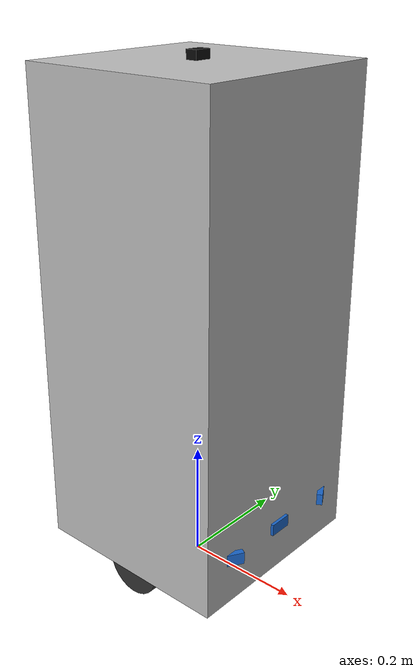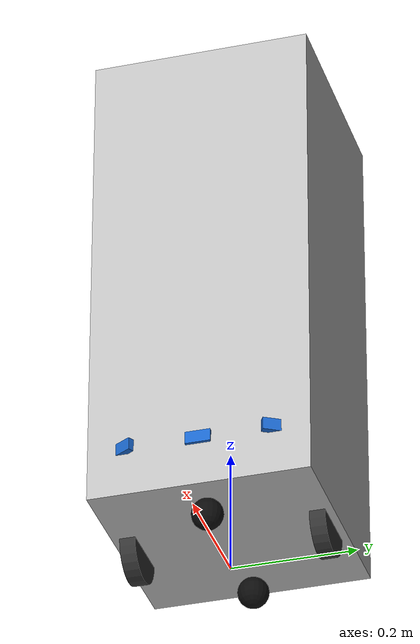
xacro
<?xml version="1.0"?>
<robot xmlns:xacro="http://www.ros.org/wiki/xacro" name="hotel_robot">

  <!-- PROPERTIES & CONSTANTS                                              -->
  <xacro:property name="chassis_length" value="0.35"/>
  <xacro:property name="chassis_width"  value="0.35"/>
  <xacro:property name="chassis_height" value="0.80"/>
  <xacro:property name="chassis_mass"   value="15.0"/>

  <xacro:property name="wheel_radius"  value="0.05"/>
  <xacro:property name="wheel_width"   value="0.025"/>
  <xacro:property name="wheel_mass"    value="0.5"/>
  <xacro:property name="track_width"   value="0.30"/>

  <xacro:property name="caster_radius" value="0.025"/>
  <xacro:property name="caster_mass"   value="0.2"/>

  <!-- Material Definitions -->
  <material name="dark_gray">
    <color rgba="0.2 0.2 0.2 1.0"/>
  </material>
  <material name="silver">
    <color rgba="0.75 0.75 0.75 1.0"/>
  </material>
  <material name="blue">
    <color rgba="0.1 0.4 0.8 1.0"/>
  </material>
  <material name="red">
    <color rgba="0.8 0.1 0.1 1.0"/>
  </material>
  <material name="black">
    <color rgba="0.05 0.05 0.05 1.0"/>
  </material>

  <!-- Inertia Macros -->
  <xacro:macro name="box_inertia" params="m w h d">
    <inertial>
      <mass value="${m}"/>
      <inertia ixx="${(1/12)*m*(h*h + d*d)}" ixy="0.0" ixz="0.0"
               iyy="${(1/12)*m*(w*w + d*d)}" iyz="0.0"
               izz="${(1/12)*m*(w*w + h*h)}"/>
    </inertial>
  </xacro:macro>

  <xacro:macro name="cylinder_inertia" params="m r h">
    <inertial>
      <mass value="${m}"/>
      <inertia ixx="${(1/12)*m*(3*r*r + h*h)}" ixy="0.0" ixz="0.0"
               iyy="${(1/12)*m*(3*r*r + h*h)}" iyz="0.0"
               izz="${(1/2)*m*r*r}"/>
    </inertial>
  </xacro:macro>

  <!-- BASE FOOTPRINT & BASE LINK                                          -->
  <link name="base_footprint"/>

  <joint name="base_footprint_joint" type="fixed">
    <parent link="base_footprint"/>
    <child link="base_link"/>
    <origin xyz="0 0 ${wheel_radius}" rpy="0 0 0"/>
  </joint>

  <!-- Main Chassis -->
  <link name="base_link">
    <visual>
      <origin xyz="0 0 ${chassis_height/2}" rpy="0 0 0"/>
      <geometry>
        <box size="${chassis_length} ${chassis_width} ${chassis_height}"/>
      </geometry>
      <material name="silver"/>
    </visual>
    <collision>
      <origin xyz="0 0 ${chassis_height/2}" rpy="0 0 0"/>
      <geometry>
        <box size="${chassis_length} ${chassis_width} ${chassis_height}"/>
      </geometry>
    </collision>
    <xacro:box_inertia m="${chassis_mass}" w="${chassis_width}" h="${chassis_height}" d="${chassis_length}"/>
  </link>

  <!-- DRIVE WHEELS                                                        -->
  <!-- Left Wheel -->
  <link name="left_wheel">
    <visual>
      <origin xyz="0 0 0" rpy="${pi/2} 0 0"/>
      <geometry>
        <cylinder radius="${wheel_radius}" length="${wheel_width}"/>
      </geometry>
      <material name="dark_gray"/>
    </visual>
    <collision>
      <origin xyz="0 0 0" rpy="${pi/2} 0 0"/>
      <geometry>
        <cylinder radius="${wheel_radius}" length="${wheel_width}"/>
      </geometry>
    </collision>
    <xacro:cylinder_inertia m="${wheel_mass}" r="${wheel_radius}" h="${wheel_width}"/>
  </link>

  <joint name="left_wheel_joint" type="continuous">
    <parent link="base_link"/>
    <child link="left_wheel"/>
    <origin xyz="0 ${track_width/2} 0" rpy="0 0 0"/>
    <axis xyz="0 1 0"/>
  </joint>

  <!-- Right Wheel -->
  <link name="right_wheel">
    <visual>
      <origin xyz="0 0 0" rpy="${pi/2} 0 0"/>
      <geometry>
        <cylinder radius="${wheel_radius}" length="${wheel_width}"/>
      </geometry>
      <material name="dark_gray"/>
    </visual>
    <collision>
      <origin xyz="0 0 0" rpy="${pi/2} 0 0"/>
      <geometry>
        <cylinder radius="${wheel_radius}" length="${wheel_width}"/>
      </geometry>
    </collision>
    <xacro:cylinder_inertia m="${wheel_mass}" r="${wheel_radius}" h="${wheel_width}"/>
  </link>

  <joint name="right_wheel_joint" type="continuous">
    <parent link="base_link"/>
    <child link="right_wheel"/>
    <origin xyz="0 -${track_width/2} 0" rpy="0 0 0"/>
    <axis xyz="0 1 0"/>
  </joint>

  <!-- PASSIVE CASTER WHEELS                                                -->
  <link name="front_caster">
    <visual>
      <geometry>
        <sphere radius="${caster_radius}"/>
      </geometry>
      <material name="black"/>
    </visual>
    <collision>
      <geometry>
        <sphere radius="${caster_radius}"/>
      </geometry>
    </collision>
    <xacro:cylinder_inertia m="${caster_mass}" r="${caster_radius}" h="${caster_radius}"/>
  </link>

  <joint name="front_caster_joint" type="fixed">
    <parent link="base_link"/>
    <child link="front_caster"/>
    <origin xyz="${chassis_length/2 - 0.05} 0 -${caster_radius}" rpy="0 0 0"/>
  </joint>

  <link name="rear_caster">
    <visual>
      <geometry>
        <sphere radius="${caster_radius}"/>
      </geometry>
      <material name="black"/>
    </visual>
    <collision>
      <geometry>
        <sphere radius="${caster_radius}"/>
      </geometry>
    </collision>
    <xacro:cylinder_inertia m="${caster_mass}" r="${caster_radius}" h="${caster_radius}"/>
  </link>

  <joint name="rear_caster_joint" type="fixed">
    <parent link="base_link"/>
    <child link="rear_caster"/>
    <origin xyz="-${chassis_length/2 - 0.05} 0 -${caster_radius}" rpy="0 0 0"/>
  </joint>

  <!-- SENSORS                                                              -->

  <!-- 1. 2D LiDAR Scanner -->
  <link name="laser_frame">
    <visual>
      <geometry>
        <cylinder radius="0.04" length="0.04"/>
      </geometry>
      <material name="blue"/>
    </visual>
    <collision>
      <geometry>
        <cylinder radius="0.04" length="0.04"/>
      </geometry>
    </collision>
  </link>

  <joint name="laser_joint" type="fixed">
    <parent link="base_link"/>
    <child link="laser_frame"/>
    <origin xyz="0 0 0.20" rpy="0 0 0"/>
  </joint>

  <!-- 2. IMU Sensor -->
  <link name="imu_link">
    <visual>
      <geometry>
        <box size="0.02 0.02 0.01"/>
      </geometry>
      <material name="red"/>
    </visual>
  </link>

  <joint name="imu_joint" type="fixed">
    <parent link="base_link"/>
    <child link="imu_link"/>
    <origin xyz="0 0 0.10" rpy="0 0 0"/>
  </joint>

  <!-- 3. Upward-Facing Camera (Ceiling AprilTag) -->
  <link name="ceiling_camera_link">
    <visual>
      <geometry>
        <box size="0.03 0.03 0.02"/>
      </geometry>
      <material name="black"/>
    </visual>
  </link>

  <joint name="ceiling_camera_joint" type="fixed">
    <parent link="base_link"/>
    <child link="ceiling_camera_link"/>
    <origin xyz="0 0 ${chassis_height}" rpy="0 -${pi/2} 0"/>
  </joint>

  <!-- 4. Ultrasonic Sensors (HC-SR04) -->
  <link name="ultrasonic_fl_link">
    <visual>
      <geometry>
        <box size="0.01 0.04 0.02"/>
      </geometry>
      <material name="blue"/>
    </visual>
  </link>

  <joint name="ultrasonic_fl_joint" type="fixed">
    <parent link="base_link"/>
    <child link="ultrasonic_fl_link"/>
    <origin xyz="${chassis_length/2} 0.12 0.08" rpy="0 0 ${pi/6}"/>
  </joint>

  <link name="ultrasonic_fc_link">
    <visual>
      <geometry>
        <box size="0.01 0.04 0.02"/>
      </geometry>
      <material name="blue"/>
    </visual>
  </link>

  <joint name="ultrasonic_fc_joint" type="fixed">
    <parent link="base_link"/>
    <child link="ultrasonic_fc_link"/>
    <origin xyz="${chassis_length/2} 0.0 0.08" rpy="0 0 0"/>
  </joint>

  <link name="ultrasonic_fr_link">
    <visual>
      <geometry>
        <box size="0.01 0.04 0.02"/>
      </geometry>
      <material name="blue"/>
    </visual>
  </link>

  <joint name="ultrasonic_fr_joint" type="fixed">
    <parent link="base_link"/>
    <child link="ultrasonic_fr_link"/>
    <origin xyz="${chassis_length/2} -0.12 0.08" rpy="0 0 -${pi/6}"/>
  </joint>

  <!-- GAZEBO MATERIALS & ROS PLUGINS                                      -->

  <gazebo reference="base_link">
    <material>Gazebo/Grey</material>
  </gazebo>
  <gazebo reference="left_wheel">
    <material>Gazebo/DarkGrey</material>
    <mu1>1.0</mu1>
    <mu2>1.0</mu2>
  </gazebo>
  <gazebo reference="right_wheel">
    <material>Gazebo/DarkGrey</material>
    <mu1>1.0</mu1>
    <mu2>1.0</mu2>
  </gazebo>
  <gazebo reference="front_caster">
    <material>Gazebo/Black</material>
    <mu1>0.01</mu1>
    <mu2>0.01</mu2>
  </gazebo>
  <gazebo reference="rear_caster">
    <material>Gazebo/Black</material>
    <mu1>0.01</mu1>
    <mu2>0.01</mu2>
  </gazebo>
  <gazebo reference="laser_frame">
    <material>Gazebo/Blue</material>
  </gazebo>

  <!-- 1. Differential Drive Plugin -->
  <gazebo>
    <plugin name="diff_drive_controller" filename="libgazebo_ros_diff_drive.so">
      <ros>
        <namespace>/</namespace>
        <remapping>cmd_vel:=cmd_vel</remapping>
        <remapping>odom:=odom</remapping>
      </ros>
      <update_rate>50</update_rate>
      <left_joint>left_wheel_joint</left_joint>
      <right_joint>right_wheel_joint</right_joint>
      <wheel_separation>${track_width}</wheel_separation>
      <wheel_diameter>${wheel_radius*2}</wheel_diameter>
      <max_wheel_torque>20.0</max_wheel_torque>
      <max_wheel_acceleration>1.0</max_wheel_acceleration>
      <publish_odom>true</publish_odom>
      <publish_odom_tf>true</publish_odom_tf>
      <publish_wheel_tf>true</publish_wheel_tf>
      <odometry_frame>odom</odometry_frame>
      <robot_base_frame>base_footprint</robot_base_frame>
    </plugin>
  </gazebo>

  <!-- 2. 2D LiDAR Ray Sensor Plugin -->
  <gazebo reference="laser_frame">
    <sensor type="ray" name="lidar_sensor">
      <pose>0 0 0 0 0 0</pose>
      <visualize>true</visualize>
      <update_rate>10</update_rate>
      <ray>
        <scan>
          <horizontal>
            <samples>360</samples>
            <resolution>1</resolution>
            <min_angle>-3.14159</min_angle>
            <max_angle>3.14159</max_angle>
          </horizontal>
        </scan>
        <range>
          <min>0.12</min>
          <max>12.0</max>
          <resolution>0.01</resolution>
        </range>
        <noise>
          <type>gaussian</type>
          <mean>0.0</mean>
          <stddev>0.01</stddev>
        </noise>
      </ray>
      <plugin name="gazebo_ros_laser" filename="libgazebo_ros_ray_sensor.so">
        <ros>
          <remapping>~/out:=scan</remapping>
        </ros>
        <output_type>sensor_msgs/LaserScan</output_type>
        <frame_name>laser_frame</frame_name>
      </plugin>
    </sensor>
  </gazebo>

  <!-- 3. IMU Sensor Plugin -->
  <gazebo reference="imu_link">
    <sensor name="imu_sensor" type="imu">
      <always_on>true</always_on>
      <update_rate>50</update_rate>
      <plugin name="gazebo_ros_imu" filename="libgazebo_ros_imu_sensor.so">
        <ros>
          <remapping>~/out:=imu/data_raw</remapping>
        </ros>
        <initial_orientation_as_reference>false</initial_orientation_as_reference>
        <frame_name>imu_link</frame_name>
      </plugin>
    </sensor>
  </gazebo>

  <!-- 4. Upward Ceiling Camera Plugin -->
  <gazebo reference="ceiling_camera_link">
    <sensor type="camera" name="ceiling_camera">
      <update_rate>10</update_rate>
      <camera name="ceiling">
        <horizontal_fov>1.3962634</horizontal_fov>
        <image>
          <width>640</width>
          <height>480</height>
          <format>R8G8B8</format>
        </image>
        <clip>
          <near>0.02</near>
          <far>5.0</far>
        </clip>
      </camera>
      <plugin name="ceiling_camera_controller" filename="libgazebo_ros_camera.so">
        <ros>
          <remapping>~/image_raw:=ceiling_camera/image_raw</remapping>
        </ros>
        <camera_name>ceiling_camera</camera_name>
        <frame_name>ceiling_camera_link</frame_name>
      </plugin>
    </sensor>
  </gazebo>

  <!-- 5. Ultrasonic Sensors Plugins -->
  <!-- Front-Left Ultrasonic -->
  <gazebo reference="ultrasonic_fl_link">
    <sensor type="ray" name="ultrasonic_fl">
      <pose>0 0 0 0 0 0</pose>
      <update_rate>10</update_rate>
      <ray>
        <scan>
          <horizontal>
            <samples>5</samples>
            <resolution>1</resolution>
            <min_angle>-0.13</min_angle>
            <max_angle>0.13</max_angle>
          </horizontal>
        </scan>
        <range>
          <min>0.02</min>
          <max>2.0</max>
          <resolution>0.01</resolution>
        </range>
      </ray>
      <plugin name="gazebo_ros_ultrasonic_fl" filename="libgazebo_ros_ray_sensor.so">
        <ros>
          <remapping>~/out:=ultrasonic/front_left</remapping>
        </ros>
        <output_type>sensor_msgs/Range</output_type>
        <radiation_type>ultrasound</radiation_type>
        <frame_name>ultrasonic_fl_link</frame_name>
      </plugin>
    </sensor>
  </gazebo>

  <!-- Front-Center Ultrasonic -->
  <gazebo reference="ultrasonic_fc_link">
    <sensor type="ray" name="ultrasonic_fc">
      <pose>0 0 0 0 0 0</pose>
      <update_rate>10</update_rate>
      <ray>
        <scan>
          <horizontal>
            <samples>5</samples>
            <resolution>1</resolution>
            <min_angle>-0.13</min_angle>
            <max_angle>0.13</max_angle>
          </horizontal>
        </scan>
        <range>
          <min>0.02</min>
          <max>2.0</max>
          <resolution>0.01</resolution>
        </range>
      </ray>
      <plugin name="gazebo_ros_ultrasonic_fc" filename="libgazebo_ros_ray_sensor.so">
        <ros>
          <remapping>~/out:=ultrasonic/front_center</remapping>
        </ros>
        <output_type>sensor_msgs/Range</output_type>
        <radiation_type>ultrasound</radiation_type>
        <frame_name>ultrasonic_fc_link</frame_name>
      </plugin>
    </sensor>
  </gazebo>

  <!-- Front-Right Ultrasonic -->
  <gazebo reference="ultrasonic_fr_link">
    <sensor type="ray" name="ultrasonic_fr">
      <pose>0 0 0 0 0 0</pose>
      <update_rate>10</update_rate>
      <ray>
        <scan>
          <horizontal>
            <samples>5</samples>
            <resolution>1</resolution>
            <min_angle>-0.13</min_angle>
            <max_angle>0.13</max_angle>
          </horizontal>
        </scan>
        <range>
          <min>0.02</min>
          <max>2.0</max>
          <resolution>0.01</resolution>
        </range>
      </ray>
      <plugin name="gazebo_ros_ultrasonic_fr" filename="libgazebo_ros_ray_sensor.so">
        <ros>
          <remapping>~/out:=ultrasonic/front_right</remapping>
        </ros>
        <output_type>sensor_msgs/Range</output_type>
        <radiation_type>ultrasound</radiation_type>
        <frame_name>ultrasonic_fr_link</frame_name>
      </plugin>
    </sensor>
  </gazebo>

</robot>
